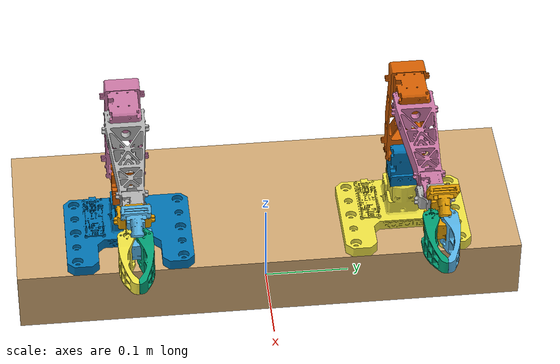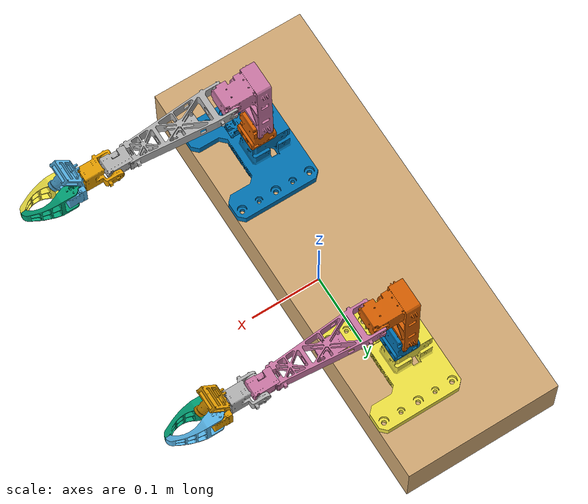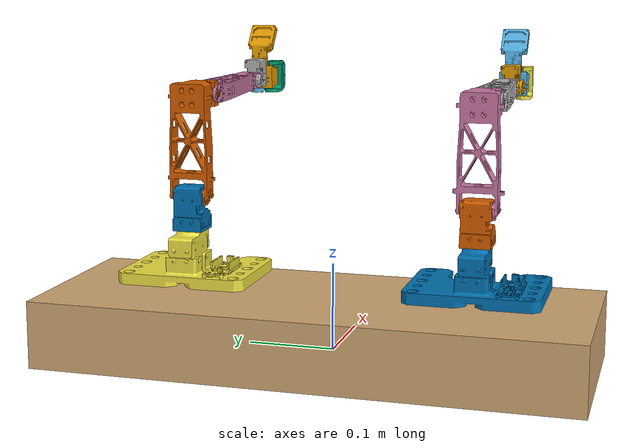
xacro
<?xml version="1.0"?>
<robot name="omx_dual" xmlns:xacro="http://www.ros.org/wiki/xacro">
  <xacro:arg name="use_sim" default="false" />
  <xacro:arg name="use_mock_hardware" default="false" />
  <xacro:arg name="mock_sensor_commands" default="false" />
  <xacro:arg name="left_port" default="/dev/ttyACM0" />
  <xacro:arg name="right_port" default="/dev/ttyACM1" />
  <xacro:arg name="controllers_yaml" default="$(find vla_dual_description)/config/dual_sim_controllers.yaml" />

  <xacro:arg name="base_x" default="0.0" />
  <xacro:arg name="base_separation" default="0.33" />
  <xacro:arg name="board_height" default="0.075" />
  <xacro:arg name="board_front" default="0.06" />   <!-- board front edge, x ahead of link0 -->
  <xacro:arg name="board_back" default="0.16" />    <!-- board back edge, x behind link0 -->
  <xacro:arg name="board_half_width" default="0.30" />
  <!-- measured arm base poses (vla_calibration table, one run per arm); empty = derived from base_x and base_separation -->
  <xacro:arg name="left_x" default="" />
  <xacro:arg name="left_y" default="" />
  <xacro:arg name="left_yaw" default="0.0" />
  <xacro:arg name="right_x" default="" />
  <xacro:arg name="right_y" default="" />
  <xacro:arg name="right_yaw" default="0.0" />

  <xacro:property name="bx" value="$(arg base_x)" />
  <xacro:property name="sep" value="$(arg base_separation)" />
  <xacro:property name="bh" value="$(arg board_height)" />
  <xacro:property name="bf" value="$(arg board_front)" />
  <xacro:property name="bb" value="$(arg board_back)" />
  <xacro:property name="bw" value="$(arg board_half_width)" />

  <xacro:include filename="$(find open_manipulator_description)/gazebo/omx_f.gazebo.xacro" />
  <xacro:include filename="$(find open_manipulator_description)/urdf/omx_f/omx_f_arm.urdf.xacro" />
  <xacro:include filename="$(find open_manipulator_description)/ros2_control/omx_f.ros2_control.xacro" />

  <link name="world"/>

  <!-- the raised board both arms stand on -->
  <link name="board">
    <visual>
      <origin xyz="0 0 ${-bh / 2}" rpy="0 0 0"/>
      <geometry><box size="${bf + bb} ${2 * bw} ${bh}"/></geometry>
      <material name="wood"><color rgba="0.82 0.66 0.45 1"/></material>
    </visual>
    <collision>
      <origin xyz="0 0 ${-bh / 2}" rpy="0 0 0"/>
      <geometry><box size="${bf + bb} ${2 * bw} ${bh}"/></geometry>
    </collision>
    <inertial>
      <mass value="5.0"/>
      <inertia ixx="0.1" ixy="0" ixz="0" iyy="0.1" iyz="0" izz="0.1"/>
    </inertial>
  </link>
  <joint name="board_fixed" type="fixed">
    <parent link="world"/>
    <child link="board"/>
    <origin xyz="${bx + (bf - bb) / 2} 0 ${bh}" rpy="0 0 0"/>
  </joint>

  <xacro:macro name="dual_arm" params="side x y yaw">
    <joint name="${side}_world_fixed" type="fixed">
      <parent link="world"/>
      <child link="${side}_link0"/>
      <origin xyz="${x} ${y} ${bh}" rpy="0 0 ${yaw}"/>
    </joint>
    <joint name="${side}_end_effector_joint" type="fixed">
      <parent link="${side}_link5"/>
      <child link="${side}_end_effector_link"/>
      <origin xyz="0.09193 -0.0016 0" rpy="0 0 0"/>
    </joint>
    <link name="${side}_end_effector_link"/>
    <xacro:omx_f prefix="${side}_" />
    <xacro:omx_f_gazebo prefix="${side}_" />
  </xacro:macro>

  <xacro:property name="lx" value="${bx if '$(arg left_x)' == '' else float('$(arg left_x)')}" />
  <xacro:property name="ly" value="${sep / 2 if '$(arg left_y)' == '' else float('$(arg left_y)')}" />
  <xacro:property name="rx" value="${bx if '$(arg right_x)' == '' else float('$(arg right_x)')}" />
  <xacro:property name="ry" value="${-sep / 2 if '$(arg right_y)' == '' else float('$(arg right_y)')}" />
  <xacro:dual_arm side="left" x="${lx}" y="${ly}" yaw="$(arg left_yaw)" />
  <xacro:dual_arm side="right" x="${rx}" y="${ry}" yaw="$(arg right_yaw)" />

  <xacro:omx_f_system name="LeftOMXF" prefix="left_" use_sim="$(arg use_sim)"
    use_mock_hardware="$(arg use_mock_hardware)" mock_sensor_commands="$(arg mock_sensor_commands)"
    port_name="$(arg left_port)"/>
  <xacro:omx_f_system name="RightOMXF" prefix="right_" use_sim="$(arg use_sim)"
    use_mock_hardware="$(arg use_mock_hardware)" mock_sensor_commands="$(arg mock_sensor_commands)"
    port_name="$(arg right_port)"/>

  <xacro:if value="$(arg use_sim)">
    <gazebo>
      <plugin filename="gz_ros2_control-system" name="gz_ros2_control::GazeboSimROS2ControlPlugin">
        <parameters>$(arg controllers_yaml)</parameters>
      </plugin>
    </gazebo>
  </xacro:if>
</robot>

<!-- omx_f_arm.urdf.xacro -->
<robot xmlns:xacro="http://www.ros.org/wiki/xacro">
   <xacro:macro name="omx_f" params="prefix">
   <xacro:property name="meshes_file_direction" value="package://open_manipulator_description/meshes/omx_f" />
      <link name="${prefix}link0" >
         <visual name="${prefix}link0_visual">
            <origin xyz="0 0 0" rpy="0 0 0" />
            <geometry><mesh filename="${meshes_file_direction}/visual/dae/link0.dae" /></geometry>
         </visual>
         <collision name="${prefix}link0_collision">
            <origin xyz="0 0 0" rpy="0 0 0" />
            <geometry>
               <mesh filename="${meshes_file_direction}/follower_01_base.stl" scale="0.001 0.001 0.001" />
            </geometry>
            <material name="grey">
               <color rgba="0.2 0.2 0.2 1" />
            </material>
         </collision>
         <inertial>
            <origin xyz="-1.441250800e-02 -3.149887900e-03 1.927659900e-02" />
            <mass value="2.238905100e-01" />
            <inertia ixx="3.568046100e-04" ixy="-3.297178900e-06" ixz="1.907676700e-05"
            iyy="2.194193200e-04" iyz="1.407164200e-06"
            izz="4.557589900e-04" />
         </inertial>
      </link>
      <joint name="${prefix}joint1" type="revolute">
         <parent link="${prefix}link0" />
         <child link="${prefix}link1" />
         <origin xyz="-0.01125 0 0.034" rpy="0 0 0" />
         <axis xyz="0 0 1" />
         <limit velocity="4.8" effort="1000" lower="${-pi*2.0}" upper="${pi*2.0}" />
         <dynamics damping="0.05" />
      </joint>
      <link name="${prefix}link1" >
         <visual name="${prefix}link1_visual">
            <origin xyz="0 0 0" rpy="0 0 0" />
            <geometry><mesh filename="${meshes_file_direction}/visual/dae/link1.dae" /></geometry>
         </visual>
         <collision name="${prefix}link1_collision">
            <origin xyz="0 0 0" rpy="0 0 0" />
            <geometry>
               <mesh filename="${meshes_file_direction}/follower_02_base_tilt_Revised.stl" scale="0.001 0.001 0.001" />
            </geometry>
            <material name="grey">
               <color rgba="0.2 0.2 0.2 1" />
            </material>
         </collision>
         <inertial>
            <origin xyz="-6.223620500e-06 6.049232000e-04 4.741880300e-02" />
            <mass value="6.598704100e-02" />
            <inertia ixx="2.173166700e-05" ixy="-7.670221200e-09" ixz="6.604697700e-09"
            iyy="2.135151300e-05" iyz="-3.790671700e-07"
            izz="1.165795500e-05" />
         </inertial>
      </link>
      <joint name="${prefix}joint2" type="revolute">
         <parent link="${prefix}link1" />
         <child link="${prefix}link2" />
         <origin xyz="0 0 0.0635" rpy="0 0 0" />
         <axis xyz="0 1 0" />
         <limit velocity="4.8" effort="1000" lower="${-pi*2.0}" upper="${pi*2.0}" />
         <dynamics damping="0.1" />
      </joint>
      <link name="${prefix}link2" >
         <visual name="${prefix}link2_visual">
            <origin xyz="0 0 0" rpy="0 0 0" />
            <geometry><mesh filename="${meshes_file_direction}/visual/dae/link2.dae" /></geometry>
         </visual>
         <collision name="${prefix}link2_collision">
            <origin xyz="0 0 0" rpy="0 0 0" />
            <geometry>
               <mesh filename="${meshes_file_direction}/follower_03_middle_verticle.stl" scale="0.001 0.001 0.001" />
            </geometry>
            <material name="grey">
               <color rgba="0.2 0.2 0.2 1" />
            </material>
         </collision>
         <inertial>
            <origin xyz="1.808991600e-02 2.977875800e-04 9.900545200e-02" />
            <mass value="8.722147100e-02" />
            <inertia ixx="1.030791500e-04" ixy="-9.237869700e-07" ixz="-2.259657800e-05"
            iyy="1.208632700e-04" iyz="-1.937414500e-06"
            izz="4.199367700e-05" />
         </inertial>
      </link>
      <joint name="${prefix}joint3" type="revolute">
         <parent link="${prefix}link2" />
         <child link="${prefix}link3" />
          <origin xyz="0.0415 0 0.11315" rpy="0 0 0" />
         <axis xyz="0 1 0" />
         <limit velocity="4.8" effort="1000" lower="${-pi*2.0}" upper="${pi*2.0}" />
         <dynamics damping="0.1" />
      </joint>
      <link name="${prefix}link3" >
         <visual name="${prefix}link3_visual">
            <origin xyz="0 0 0" rpy="0 0 0" />
            <geometry><mesh filename="${meshes_file_direction}/visual/dae/link3.dae" /></geometry>
         </visual>
         <collision name="${prefix}link3_collision">
            <origin xyz="0 0 0" rpy="0 0 0" />
            <geometry>
               <mesh filename="${meshes_file_direction}/follower_04_middle_horizontal.stl" scale="0.001 0.001 0.001" />
            </geometry>
            <material name="grey">
               <color rgba="0.2 0.2 0.2 1" />
            </material>
         </collision>
         <inertial>
            <origin xyz="8.739860200e-02 4.131006500e-04 -3.582921000e-03" />
            <mass value="8.375912900e-02" />
            <inertia ixx="1.520310100e-05" ixy="-5.856958300e-07" ixz="-8.201398200e-06"
            iyy="2.260615800e-04" iyz="4.169928000e-07"
            izz="2.306688700e-04" />
         </inertial>
      </link>
      <joint name="${prefix}joint4" type="revolute">
         <parent link="${prefix}link3" />
         <child link="${prefix}link4" />
         <origin xyz="0.162 0 0" rpy="0 0 0" />
         <axis xyz="0 1 0" />
         <limit velocity="4.8" effort="1000" lower="${-pi*2.0}" upper="${pi*2.0}" />
         <dynamics damping="0.1" />
      </joint>
      <link name="${prefix}link4" >
         <visual name="${prefix}link4_visual">
            <origin xyz="0 0 0" rpy="0 0 0" />
            <geometry><mesh filename="${meshes_file_direction}/visual/dae/link4.dae" /></geometry>
         </visual>
         <collision name="${prefix}link4_collision">
            <origin xyz="0 0 0" rpy="0 0 0" />
            <geometry>
               <mesh filename="${meshes_file_direction}/follower_05_tip.stl" scale="0.001 0.001 0.001" />
            </geometry>
            <material name="grey">
               <color rgba="0.2 0.2 0.2 1" />
            </material>
         </collision>
         <inertial>
            <origin xyz="2.323498000e-02 6.773537800e-05 5.976131200e-03" />
            <mass value="2.997506300e-02" />
            <inertia ixx="5.099513000e-06" ixy="2.633166800e-08" ixz="-7.760319700e-07"
            iyy="7.099047100e-06" iyz="1.637967900e-09"
            izz="6.311949500e-06" />
         </inertial>
      </link>
      <joint name="${prefix}joint5" type="revolute">
         <parent link="${prefix}link4" />
         <child link="${prefix}link5" />
         <origin xyz="0.0287 0 0" rpy="0 0 0" />
         <axis xyz="1 0 0" />
         <limit velocity="4.8" effort="1000" lower="${-pi*2.0}" upper="${pi*2.0}" />
         <dynamics damping="0.1" />
      </joint>
      <link name="${prefix}link5" >
         <visual name="${prefix}link5_visual">
            <origin xyz="0 0 0" rpy="0 0 0" />
            <geometry><mesh filename="${meshes_file_direction}/visual/dae/link5.dae" /></geometry>
         </visual>
         <collision name="${prefix}link5_collision">
            <origin xyz="0 0 0" rpy="0 0 0" />
            <geometry>
               <mesh filename="${meshes_file_direction}/follower_06_pan_Revised.stl" scale="0.001 0.001 0.001" />
            </geometry>
            <material name="grey">
               <color rgba="0.2 0.2 0.2 1" />
            </material>
         </collision>
         <inertial>
            <origin xyz="2.807240700e-02 2.413594100e-05 1.352891400e-02" />
            <mass value="4.381088700e-02" />
            <inertia ixx="2.369445900e-05" ixy="-2.614252600e-08" ixz="-2.939284100e-06"
            iyy="2.323692400e-05" iyz="7.543040500e-08"
            izz="7.180629100e-06" />
         </inertial>
      </link>
      <joint name="${prefix}gripper_joint_1" type="revolute">
         <parent link="${prefix}link5" />
         <child link="${prefix}link6" />
         <origin xyz="0.0295 0.0075 0" rpy="0 0 0" />
         <axis xyz="0 0 1" />
         <limit velocity="4.8" effort="1000" lower="${-pi*2.0}" upper="${pi*2.0}" />
         <dynamics damping="0.1" />
      </joint>
      <link name="${prefix}link6" >
         <visual name="${prefix}link6_visual">
            <origin xyz="0 0 0" rpy="0 0 0" />
            <geometry><mesh filename="${meshes_file_direction}/visual/dae/link6.dae" /></geometry>
         </visual>
         <collision name="${prefix}link6_collision">
            <origin xyz="0 0 0" rpy="0 0 0" />
            <geometry>
               <mesh filename="${meshes_file_direction}/follower_07_gripper_motorized.stl" scale="0.001 0.001 0.001" />
            </geometry>
            <material name="grey">
               <color rgba="0.2 0.2 0.2 1" />
            </material>
         </collision>
         <inertial>
            <origin xyz="1.616456500e-02 1.273103200e-03 2.729159800e-04" />
            <mass value="1.209067700e-02" />
            <inertia ixx="2.708328700e-06" ixy="1.397245300e-07" ixz="5.888794300e-08"
            iyy="6.873372800e-06" iyz="1.537070800e-08"
            izz="4.694188100e-06" />
         </inertial>
      </link>
      <joint name="${prefix}gripper_joint_2" type="revolute">
         <parent link="${prefix}link5" />
         <child link="${prefix}link7" />
         <origin xyz="0.0295 -0.0108 0" rpy="0 0 0" />
         <axis xyz="0 0 1" />
         <limit velocity="4.8" effort="1000" lower="${-pi*2.0}" upper="${pi*2.0}" />
         <dynamics damping="0.1" />
         <mimic joint="${prefix}gripper_joint_1" multiplier="-1"/>
      </joint>
      <link name="${prefix}link7" >
         <visual name="${prefix}link7_visual">
            <origin xyz="0 0 0" rpy="0 0 0" />
            <geometry><mesh filename="${meshes_file_direction}/visual/dae/link7.dae" /></geometry>
         </visual>
         <collision name="${prefix}link7_collision">
            <origin xyz="0 0 0" rpy="0 0 0" />
            <geometry>
               <mesh filename="${meshes_file_direction}/follower_08_gripper_gear.stl" scale="0.001 0.001 0.001" />
            </geometry>
            <material name="grey">
               <color rgba="0.2 0.2 0.2 1" />
            </material>
         </collision>
         <inertial>
            <origin xyz="1.616456500e-02 1.273103200e-03 2.729159800e-04" />
            <mass value="1.209067700e-02" />
            <inertia ixx="2.708328700e-06" ixy="1.397245300e-07" ixz="5.888794300e-08"
            iyy="6.873372800e-06" iyz="1.537070800e-08"
            izz="4.694188100e-06" />
         </inertial>
      </link>
   </xacro:macro>
</robot>
